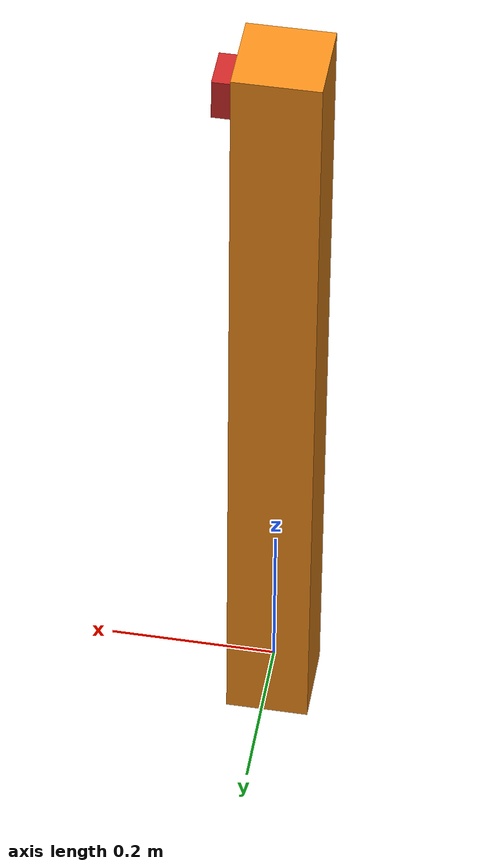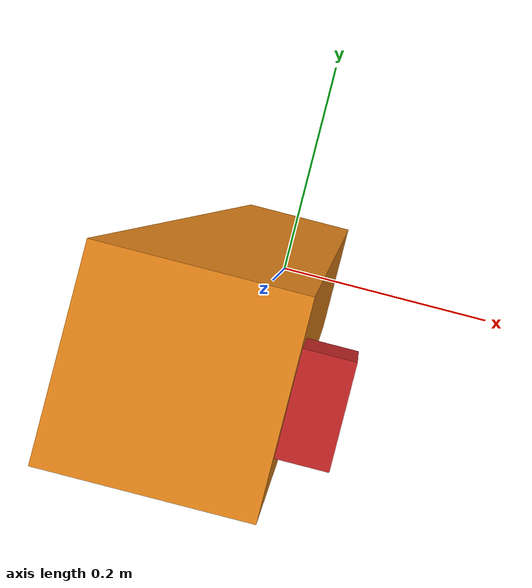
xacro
<?xml version="1.0"?>
<!-- Revolute-Revolute Manipulator -->
<robot name="rrbot" xmlns:xacro="http://www.ros.org/wiki/xacro">

  <!-- Constants for robot dimensions -->
  <xacro:property name="PI" value="3.1415926535897931"/>
  <xacro:property name="mass" value="1" /> <!-- arbitrary value for mass -->
  <xacro:property name="width" value="0.1" /> <!-- Square dimensions (widthxwidth) of beams -->
  <xacro:property name="height1" value="2" /> <!-- Link 1 -->
  <xacro:property name="height2" value="1" /> <!-- Link 2 -->
  <xacro:property name="height3" value="1" /> <!-- Link 3 -->
  <xacro:property name="camera_link" value="0.05" /> <!-- Size of square 'camera' box -->
  <xacro:property name="axel_offset" value="0.05" /> <!-- Space btw top of beam and the each joint -->

  <!-- Import all Gazebo-customization elements, including Gazebo colors -->
  <xacro:include filename="$(find rrbot_description)/urdf/rrbot.gazebo" />
  <!-- Import Rviz colors -->
  <xacro:include filename="$(find rrbot_description)/urdf/materials.xacro" />

  <!-- Used for fixing robot to Gazebo 'base_link' -->
  <link name="world"/>

  <joint name="fixed" type="planar">
    <parent link="world"/>
    <child link="link3"/>
  </joint>

  <!-- Base Link -->

  <!-- Middle Link -->

  <!-- Top Link -->
  <link name="link3">
    <collision>
      <origin xyz="0 0 ${height3/2 - axel_offset}" rpy="0 0 0"/>
      <geometry>
	<box size="${width} ${width} ${height3}"/>
      </geometry>
    </collision>

    <visual>
      <origin xyz="0 0 ${height3/2 - axel_offset}" rpy="0 0 0"/>
      <geometry>
	<box size="${width} ${width} ${height3}"/>
      </geometry>
      <material name="orange"/>
    </visual>

    <inertial>
      <origin xyz="0 0 ${height3/2 - axel_offset}" rpy="0 0 0"/>
      <mass value="${mass}"/>
      <inertia
	  ixx="${mass / 12.0 * (width*width + height3*height3)}" ixy="0.0" ixz="0.0"
	  iyy="${mass / 12.0 * (height3*height3 + width*width)}" iyz="0.0"
	  izz="${mass / 12.0 * (width*width + width*width)}"/>
    </inertial>
  </link>

  <!-- Hokuyo Laser -->

  <joint name="camera_joint" type="fixed">
    <axis xyz="0 1 0" />
    <origin xyz="${camera_link} 0 ${height3 - axel_offset*2}" rpy="0 0 0"/>
    <parent link="link3"/>
    <child link="camera_link"/>
  </joint>

  <!-- Camera -->
  <link name="camera_link">
    <collision>
      <origin xyz="0 0 0" rpy="0 0 0"/>
      <geometry>
	<box size="${camera_link} ${camera_link} ${camera_link}"/>
      </geometry>
    </collision>

    <visual>
      <origin xyz="0 0 0" rpy="0 0 0"/>
      <geometry>
	<box size="${camera_link} ${camera_link} ${camera_link}"/>
      </geometry>
      <material name="red"/>
    </visual>

    <inertial>
      <mass value="1e-5" />
      <origin xyz="0 0 0" rpy="0 0 0"/>
      <inertia ixx="1e-6" ixy="0" ixz="0" iyy="1e-6" iyz="0" izz="1e-6" />
    </inertial>
  </link>

  <!-- generate an optical frame http://www.ros.org/reps/rep-0103.html#suffix-frames
      so that ros and opencv can operate on the camera frame correctly -->
  <joint name="camera_optical_joint" type="fixed">
    <!-- these values have to be these values otherwise the gazebo camera image
        won't be aligned properly with the frame it is supposedly originating from -->
    <origin xyz="0 0 0" rpy="${-pi/2} 0 ${-pi/2}"/>
    <parent link="camera_link"/>
    <child link="camera_link_optical"/>
  </joint>

  <link name="camera_link_optical">
  </link>

</robot>
